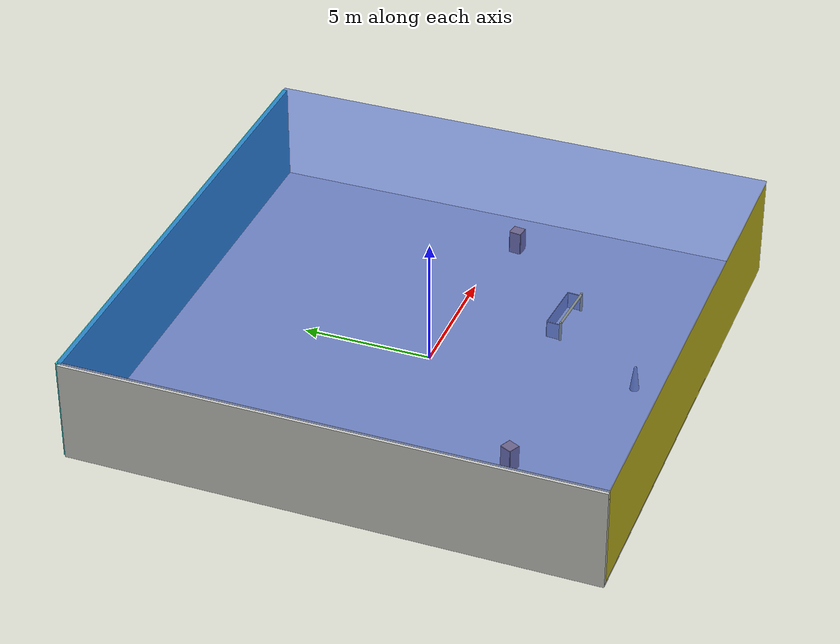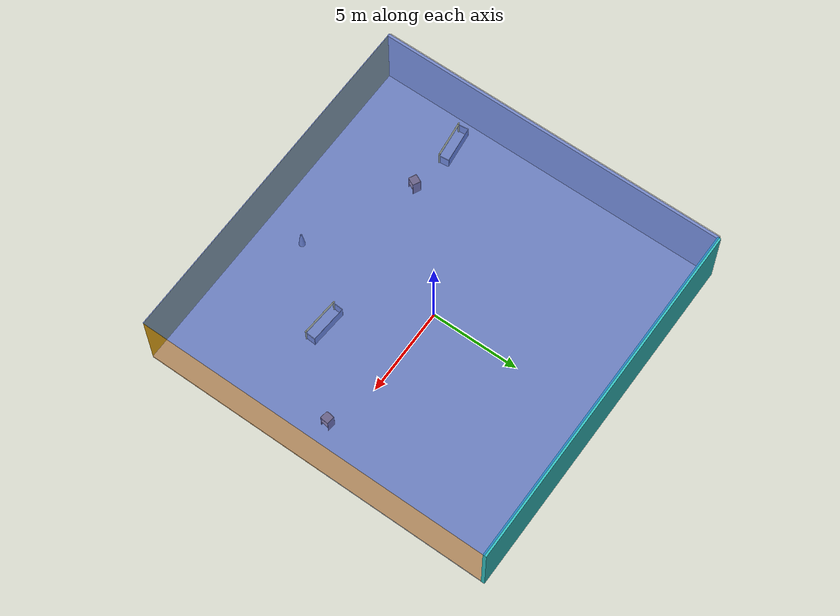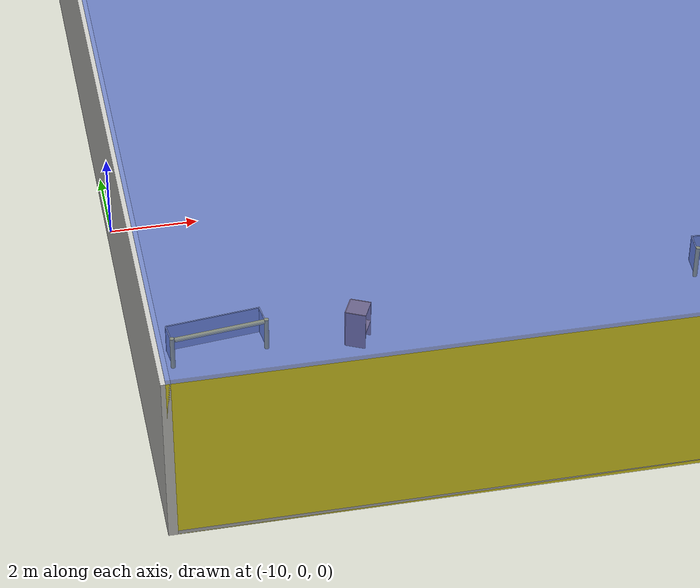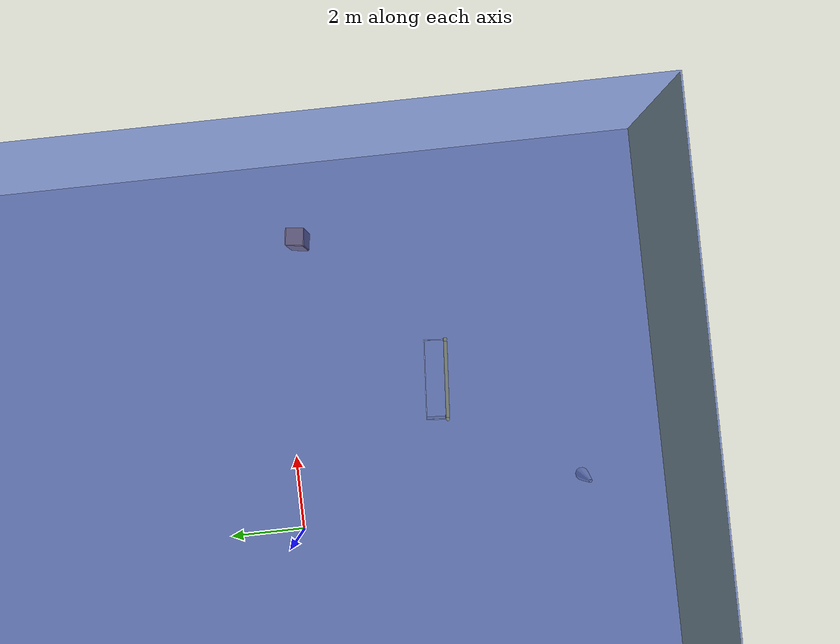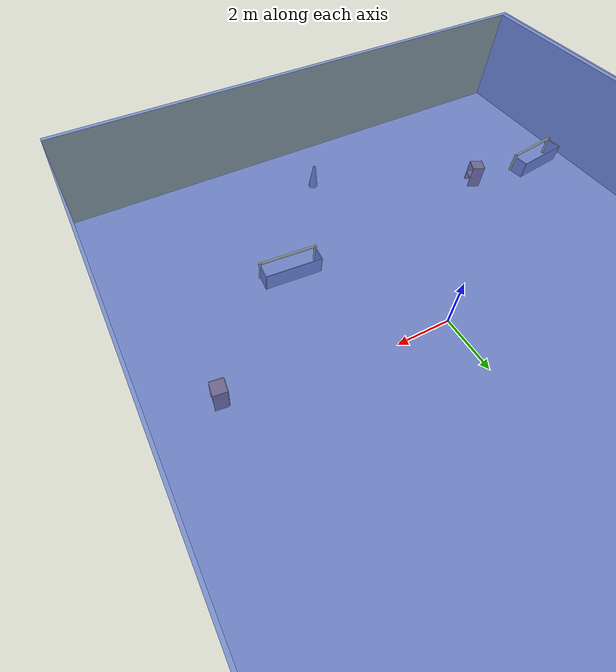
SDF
<sdf version="1.4">
 <world name="default">
  <physics type="ode">
   <max_step_size>0.001</max_step_size>
   <real_time_factor>1</real_time_factor>
   <real_time_update_rate>1000</real_time_update_rate>
   <gravity>0 0 -9.8</gravity>
  </physics>
  <scene><ambient>0.4 0.4 0.4 1</ambient><background>0.7 0.7 0.7 1</background><shadows>1</shadows></scene>
  <model name="Surrounding">
   <static>1</static>
   <link name="Ceiling">
    <collision name="Ceiling_Collision"><geometry><box><size>20 20 0.1</size></box></geometry></collision>
    <visual name="Ceiling_Visual">
     <geometry><box><size>20 20 0.1</size></box></geometry>
     <material>
      <script><uri>file://media/materials/scripts/gazebo.material</uri><name>Gazebo/BlueTransparent</name></script>
     </material>
    </visual>
    <pose>0 0 4.05 0 0 0</pose>
   </link>
   <link name="Wall_South">
    <collision name="Wall_South_Collision">
     <geometry><box><size>20 0 4</size></box></geometry>
     <pose>0 0 2 0 -0 0</pose>
    </collision>
    <visual name="Wall_South_Visual">
     <pose>0 0 2 0 -0 0</pose>
     <geometry><box><size>20 0 4</size></box></geometry>
     <material>
      <script><uri>file://media/materials/scripts/gazebo.material</uri><name>Gazebo/Yellow</name></script>
     </material>
    </visual>
    <velocity_decay><linear>0</linear><angular>0</angular></velocity_decay>
    <pose>0 -10 0 0 -0 0</pose>
   </link>
   <link name="Wall_East">
    <collision name="Wall_21_Collision">
     <geometry><box><size>20 0 4</size></box></geometry>
     <pose>0 0 2 0 -0 0</pose>
    </collision>
    <visual name="Wall_21_Visual">
     <pose>0 0 2 0 -0 0</pose>
     <geometry><box><size>20 0 4</size></box></geometry>
     <material>
      <script>
       <uri>file://media/materials/scripts/gazebo.material</uri>
       <name>Gazebo/OrangeTransparent</name>
      </script>
     </material>
    </visual>
    <velocity_decay><linear>0</linear><angular>0</angular></velocity_decay>
    <pose>10 0 0 0 -0 1.5708</pose>
   </link>
   <link name="Wall_North">
    <collision name="Wall_22_Collision">
     <geometry><box><size>20 0.2 4</size></box></geometry>
     <pose>0 0 2 0 -0 0</pose>
    </collision>
    <visual name="Wall_22_Visual">
     <pose>0 0 2 0 -0 0</pose>
     <geometry><box><size>20 0.2 4</size></box></geometry>
     <material>
      <script><uri>file://media/materials/scripts/gazebo.material</uri><name>Gazebo/TurquoiseGlow</name></script>
     </material>
    </visual>
    <velocity_decay><linear>0</linear><angular>0</angular></velocity_decay>
    <pose>0 10 0 0 -0 0</pose>
   </link>
   <link name="Wall_West">
    <collision name="Wall_23_Collision">
     <geometry><box><size>20 0.2 4</size></box></geometry>
     <pose>0 0 2 0 -0 0</pose>
    </collision>
    <visual name="Wall_23_Visual">
     <pose>0 0 2 0 -0 0</pose>
     <geometry><box><size>20 0.2 4</size></box></geometry>
     <material>
      <script><uri>file://media/materials/scripts/gazebo.material</uri><name>Gazebo/CeilingTiled</name></script>
     </material>
    </visual>
    <velocity_decay><linear>0</linear><angular>0</angular></velocity_decay>
    <pose>-10 0 0 0 0 -1.5708</pose>
   </link>
   <link name="Ground_link">
    <collision name="collision">
     <pose>0 0 .05 0 -0 0</pose>
     <geometry><box><size>20 20 0.1</size></box></geometry>
    </collision>
    <visual name="visual">
     <pose>0 0 .05 0 -0 0</pose>
     <geometry><box><size>20 20 0.1</size></box></geometry>
     <material>
      <script><uri>file://media/materials/scripts/gazebo.material</uri><name>Gazebo/Pioneer2Body</name></script>
     </material>
    </visual>
   </link>
   <static>1</static>
  </model>
  <spherical_coordinates>
   <surface_model>EARTH_WGS84</surface_model>
   <latitude_deg>0</latitude_deg>
   <longitude_deg>0</longitude_deg>
   <elevation>0</elevation>
   <heading_deg>0</heading_deg>
  </spherical_coordinates>
  <light name="lightball_0" type="diffuse">
   <diffuse>0.8 0.8 0.8 1</diffuse>
   <specular>0.2 0.2 0.2 1</specular>
   <attenuation>
    <range>100</range>
    <constant>0.7</constant>
    <linear>0.01</linear>
    <quadratic>0.001</quadratic>
   </attenuation>
   <direction>-0.5 0.1 -0.9</direction>
   <pose>9.76059639877 -6.8752256826 2.01703658616 0 0 0</pose>
  </light>
  <light name="lightball_1" type="diffuse">
   <diffuse>0.8 0.8 0.8 1</diffuse>
   <specular>0.2 0.2 0.2 1</specular>
   <attenuation>
    <range>100</range>
    <constant>0.7</constant>
    <linear>0.01</linear>
    <quadratic>0.001</quadratic>
   </attenuation>
   <direction>-0.5 0.1 -0.9</direction>
   <pose>8.05405509166 -6.60365164929 2.55998196924 0 0 0</pose>
  </light>
  <light name="lightball_2" type="diffuse">
   <diffuse>0.8 0.8 0.8 1</diffuse>
   <specular>0.2 0.2 0.2 1</specular>
   <attenuation>
    <range>100</range>
    <constant>0.7</constant>
    <linear>0.01</linear>
    <quadratic>0.001</quadratic>
   </attenuation>
   <direction>-0.5 0.1 -0.9</direction>
   <pose>-0.958887387508 -4.9658879766 3.80118991453 0 0 0</pose>
  </light>
  <light name="lightball_3" type="diffuse">
   <diffuse>0.8 0.8 0.8 1</diffuse>
   <specular>0.2 0.2 0.2 1</specular>
   <attenuation>
    <range>100</range>
    <constant>0.7</constant>
    <linear>0.01</linear>
    <quadratic>0.001</quadratic>
   </attenuation>
   <direction>-0.5 0.1 -0.9</direction>
   <pose>5.03689216552 -0.698585955343 1.24770671386 0 0 0</pose>
  </light>
  <light name="lightball_4" type="diffuse">
   <diffuse>0.8 0.8 0.8 1</diffuse>
   <specular>0.2 0.2 0.2 1</specular>
   <attenuation>
    <range>100</range>
    <constant>0.7</constant>
    <linear>0.01</linear>
    <quadratic>0.001</quadratic>
   </attenuation>
   <direction>-0.5 0.1 -0.9</direction>
   <pose>0.911198274726 1.95601474178 1.1784591853 0 0 0</pose>
  </light>
  <light name="lightball_5" type="diffuse">
   <diffuse>0.8 0.8 0.8 1</diffuse>
   <specular>0.2 0.2 0.2 1</specular>
   <attenuation>
    <range>100</range>
    <constant>0.7</constant>
    <linear>0.01</linear>
    <quadratic>0.001</quadratic>
   </attenuation>
   <direction>-0.5 0.1 -0.9</direction>
   <pose>-7.91209938081 5.75011341725 2.72565133697 0 0 0</pose>
  </light>
  <light name="lightball_6" type="diffuse">
   <diffuse>0.8 0.8 0.8 1</diffuse>
   <specular>0.2 0.2 0.2 1</specular>
   <attenuation>
    <range>100</range>
    <constant>0.7</constant>
    <linear>0.01</linear>
    <quadratic>0.001</quadratic>
   </attenuation>
   <direction>-0.5 0.1 -0.9</direction>
   <pose>7.06874232726 -2.14888171192 3.01193336251 0 0 0</pose>
  </light>
  <light name="lightball_7" type="diffuse">
   <diffuse>0.8 0.8 0.8 1</diffuse>
   <specular>0.2 0.2 0.2 1</specular>
   <attenuation>
    <range>100</range>
    <constant>0.7</constant>
    <linear>0.01</linear>
    <quadratic>0.001</quadratic>
   </attenuation>
   <direction>-0.5 0.1 -0.9</direction>
   <pose>9.5285753886 -5.52187834336 3.22580108458 0 0 0</pose>
  </light>
  <include>
   <uri>model://robocup_3Dsim_goal</uri>
   <pose>-8.24062317192 -4.96028938303 0 0 0 1.68762044287</pose>
  </include>
  <include><uri>model://cabinet</uri><pose>-5.2050588232 -4.96436382645 0 0 0 2.69344096956</pose></include>
  <include>
   <uri>model://construction_cone</uri>
   <pose>0.718678404185 -7.74613965466 0 0 0 0.814680481336</pose>
  </include>
  <include>
   <uri>model://robocup_3Dsim_goal</uri>
   <pose>3.72724709694 -4.30813366233 0 0 0 1.49994268907</pose>
  </include>
  <include><uri>model://cabinet</uri><pose>7.85965509097 -0.744627240448 0 0 0 3.01276333038</pose></include>
 </world>
</sdf>

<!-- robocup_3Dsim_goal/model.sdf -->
<sdf version="1.5">
  <model name="robocup_3d_goal">
    <static>true</static>
    <link name="left_post">
      <pose>0 1.05 0.45 0 0 0</pose>
      <collision name="collision">
        <geometry>
          <cylinder>
            <radius>0.05</radius>
            <length>0.9</length>
          </cylinder>
        </geometry>
      </collision>
      <visual name="visual">
        <geometry>
          <cylinder>
            <radius>0.05</radius>
            <length>0.9</length>
          </cylinder>
        </geometry>
        <material>
          <script>
            <uri>file://media/materials/scripts/gazebo.material</uri>
            <name>Gazebo/ZincYellow</name>
          </script>
        </material>
      </visual>
    </link>
    <link name="left_support_horiz_lower">
      <pose>0.30 1.05 0.01 0 0 0</pose>
      <collision name="collision">
        <geometry>
          <box>
            <size>0.50 0.02 0.02</size>
          </box>
        </geometry>
      </collision>
      <visual name="visual">
        <geometry>
          <box>
            <size>0.50 0.02 0.02</size>
          </box>
        </geometry>
        <material>
          <script>
            <uri>file://media/materials/scripts/gazebo.material</uri>
            <name>Gazebo/White</name>
          </script>
        </material>
      </visual>
    </link>
    <link name="left_support_horiz_upper">
      <pose>0.30 1.05 0.79 0 0 0</pose>
      <collision name="collision">
        <geometry>
          <box>
            <size>0.50 0.02 0.02</size>
          </box>
        </geometry>
      </collision>
      <visual name="visual">
        <geometry>
          <box>
            <size>0.50 0.02 0.02</size>
          </box>
        </geometry>
        <material>
          <script>
            <uri>file://media/materials/scripts/gazebo.material</uri>
            <name>Gazebo/White</name>
          </script>
        </material>
      </visual>
    </link>
    <link name="left_support_vertical">
      <pose>0.56 1.05 0.4 0 1.5708 0</pose>
      <collision name="collision">
        <geometry>
          <box>
            <size>0.80 0.02 0.02</size>
          </box>
        </geometry>
      </collision>
      <visual name="visual">
        <geometry>
          <box>
            <size>0.80 0.02 0.02</size>
          </box>
        </geometry>
        <material>
          <script>
            <uri>file://media/materials/scripts/gazebo.material</uri>
            <name>Gazebo/White</name>
          </script>
        </material>
      </visual>
    </link>
    <link name="right_support_horiz_lower">
      <pose>0.30 -1.05 0.01 0 0 0</pose>
      <collision name="collision">
        <geometry>
          <box>
            <size>0.50 0.02 0.02</size>
          </box>
        </geometry>
      </collision>
      <visual name="visual">
        <geometry>
          <box>
            <size>0.50 0.02 0.02</size>
          </box>
        </geometry>
        <material>
          <script>
            <uri>file://media/materials/scripts/gazebo.material</uri>
            <name>Gazebo/White</name>
          </script>
        </material>
      </visual>
    </link>
    <link name="right_support_horiz_upper">
      <pose>0.30 -1.05 0.79 0 0 0</pose>
      <collision name="collision">
        <geometry>
          <box>
            <size>0.50 0.02 0.02</size>
          </box>
        </geometry>
      </collision>
      <visual name="visual">
        <geometry>
          <box>
            <size>0.50 0.02 0.02</size>
          </box>
        </geometry>
        <material>
          <script>
            <uri>file://media/materials/scripts/gazebo.material</uri>
            <name>Gazebo/White</name>
          </script>
        </material>
      </visual>
    </link>
    <link name="right_support_vertical">
      <pose>0.56 -1.05 0.4 0 1.5708 0</pose>
      <collision name="collision">
        <geometry>
          <box>
            <size>0.80 0.02 0.02</size>
          </box>
        </geometry>
      </collision>
      <visual name="visual">
        <geometry>
          <box>
            <size>0.80 0.02 0.02</size>
          </box>
        </geometry>
        <material>
          <script>
            <uri>file://media/materials/scripts/gazebo.material</uri>
            <name>Gazebo/White</name>
          </script>
        </material>
      </visual>
    </link>
    <link name="center_support_horiz_lower">
      <pose>0.56 0 0.01 0 1.5708 0</pose>
      <collision name="collision">
        <geometry>
          <box>
            <size>0.02 2.08 0.02</size>
          </box>
        </geometry>
      </collision>
      <visual name="visual">
        <geometry>
          <box>
            <size>0.02 2.08 0.02</size>
          </box>
        </geometry>
        <material>
          <script>
            <uri>file://media/materials/scripts/gazebo.material</uri>
            <name>Gazebo/White</name>
          </script>
        </material>
      </visual>
    </link>
    <link name="center_support_horiz_upper">
      <pose>0.56 0 0.79 0 1.5708 0</pose>
      <collision name="collision">
        <geometry>
          <box>
            <size>0.02 2.08 0.02</size>
          </box>
        </geometry>
      </collision>
      <visual name="visual">
        <geometry>
          <box>
            <size>0.02 2.08 0.02</size>
          </box>
        </geometry>
        <material>
          <script>
            <uri>file://media/materials/scripts/gazebo.material</uri>
            <name>Gazebo/White</name>
          </script>
        </material>
      </visual>
    </link>
    <link name="right_post">
      <pose>0 -1.05 0.45 0 0 0</pose>
      <collision name="collision">
        <geometry>
          <cylinder>
            <radius>0.05</radius>
            <length>0.9</length>
          </cylinder>
        </geometry>
      </collision>
      <visual name="visual">
        <geometry>
          <cylinder>
            <radius>0.05</radius>
            <length>0.9</length>
          </cylinder>
        </geometry>
        <material>
          <script>
            <uri>file://media/materials/scripts/gazebo.material</uri>
            <name>Gazebo/ZincYellow</name>
          </script>
        </material>
      </visual>
    </link>
    <link name="crossbar">
      <pose>0 0 0.85 1.57 1.57 0</pose>
      <collision name="collision">
        <geometry>
          <cylinder>
            <radius>0.05</radius>
            <length>2.0</length>
          </cylinder>
        </geometry>
      </collision>
      <visual name="visual">
        <geometry>
          <cylinder>
            <radius>0.05</radius>
            <length>2.0</length>
          </cylinder>
        </geometry>
        <material>
          <script>
            <uri>file://media/materials/scripts/gazebo.material</uri>
            <name>Gazebo/ZincYellow</name>
          </script>
        </material>
      </visual>
    </link>
    <link name="center_net">
      <pose>0.56 0 0.40 0 0 0</pose>
      <collision name="collision">
        <geometry>
          <box>
            <size>0.01 2.1 0.80</size>
          </box>
        </geometry>
      </collision>
      <visual name="visual">
        <geometry>
          <box>
            <size>0.01 2.1 0.80</size>
          </box>
        </geometry>
        <material>
          <script>
            <uri>model://../model_source/models/robocup09_spl_field/materials/scripts/</uri>
            <uri>model://../model_source/models/robocup09_spl_field/materials/textures/</uri>
            <name>RoboCup/Net</name>
          </script>
        </material>
      </visual>
    </link>
    <link name="left_net">
      <pose>0.30 1.05 0.40 0 0 0</pose>
      <collision name="collision">
        <geometry>
          <box>
            <size>0.50 0.01 0.76</size>
          </box>
        </geometry>
      </collision>
      <visual name="visual">
        <geometry>
          <box>
            <size>0.50 0.01 0.76</size>
          </box>
        </geometry>
        <material>
          <script>
            <uri>model://../model_source/models/robocup09_spl_field/materials/scripts/</uri>
            <uri>model://../model_source/models/robocup09_spl_field/materials/textures/</uri>
            <name>RoboCup/Net</name>
          </script>
        </material>
      </visual>
    </link>
    <link name="right_net">
      <pose>0.30 -1.05 0.40 0 0 0</pose>
      <collision name="collision">
        <geometry>
          <box>
            <size>0.50 0.01 0.76</size>
          </box>
        </geometry>
      </collision>
      <visual name="visual">
        <geometry>
          <box>
            <size>0.50 0.01 0.76</size>
          </box>
        </geometry>
        <material>
          <script>
            <uri>model://../model_source/models/robocup09_spl_field/materials/scripts/</uri>
            <uri>model://../model_source/models/robocup09_spl_field/materials/textures/</uri>
            <name>RoboCup/Net</name>
          </script>
        </material>
      </visual>
    </link>
  </model>
</sdf>

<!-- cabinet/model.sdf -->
<sdf version="1.5">
  <model name="cabinet">
    <static>true</static>
    <link name="cabinet_bottom_plate">
      <inertial>
        <pose>0 0 -1 0 0 0</pose>
        <inertia>
          <ixx>2.050000</ixx>
          <ixy>0</ixy>
          <ixz>0</ixz>
          <iyy>2.050000</iyy>
          <iyz>0</iyz>
          <izz>2.050000</izz>
        </inertia>
        <mass>25.000000</mass>
      </inertial>
      <collision name="cabinet_bottom_plate_geom">
        <pose>0 0 0.010000 0 0 0</pose>
        <geometry>
          <box>
            <size>0.450000 0.450000 0.020000</size>
          </box>
        </geometry>
      </collision>
      <visual name="cabinet_bottom_plate_geom_visual">
        <pose>0 0 0.010000 0 0 0</pose>
        <geometry>
          <box>
            <size>0.450000 0.450000 0.020000</size>
          </box>
        </geometry>
        <material>
          <script>
            <uri>model://media/materials/scripts/gazebo.material</uri>
            <name>Gazebo/Wood</name>
          </script>
        </material>
      </visual>
      <collision name="cabinet_bottom_plate_geom_cabinet_back_plate">
        <pose>0.235000 0 0.510000 0 0 0</pose>
        <geometry>
          <box>
            <size>0.020000 0.450000 1.020000</size>
          </box>
        </geometry>
      </collision>
      <visual name="cabinet_bottom_plate_geom_cabinet_back_plate_visual">
        <pose>0.235000 0 0.510000 0 0 0</pose>
        <geometry>
          <box>
            <size>0.020000 0.450000 1.020000</size>
          </box>
        </geometry>
        <material>
          <script>
            <uri>model://media/materials/scripts/gazebo.material</uri>
            <name>Gazebo/Wood</name>
          </script>
        </material>
      </visual>
      <collision name="cabinet_bottom_plate_geom_cabinet_left_plate">
        <pose>0 0.235000 0.510000 0 0 0</pose>
        <geometry>
          <box>
            <size>0.450000 0.020000 1.020000</size>
          </box>
        </geometry>
      </collision>
      <visual name="cabinet_bottom_plate_geom_cabinet_left_plate_visual">
        <pose>0 0.235000 0.510000 0 0 0</pose>
        <geometry>
          <box>
            <size>0.450000 0.020000 1.020000</size>
          </box>
        </geometry>
        <material>
          <script>
            <uri>model://media/materials/scripts/gazebo.material</uri>
            <name>Gazebo/Wood</name>
          </script>
        </material>
      </visual>
      <collision name="cabinet_bottom_plate_geom_cabinet_middle_plate">
        <pose>0 0 0.510000 0 0 0</pose>
        <geometry>
          <box>
            <size>0.450000 0.450000 0.020000</size>
          </box>
        </geometry>
      </collision>
      <visual name="cabinet_bottom_plate_geom_cabinet_middle_plate_visual">
        <pose>0 0 0.510000 0 0 0</pose>
        <geometry>
          <box>
            <size>0.450000 0.450000 0.020000</size>
          </box>
        </geometry>
        <material>
          <script>
            <uri>model://media/materials/scripts/gazebo.material</uri>
            <name>Gazebo/Wood</name>
          </script>
        </material>
      </visual>
      <collision name="cabinet_bottom_plate_geom_cabinet_right_plate">
        <pose>0 -0.235000 0.510000 0 0 0</pose>
        <geometry>
          <box>
            <size>0.450000 0.020000 1.020000</size>
          </box>
        </geometry>
      </collision>
      <visual name="cabinet_bottom_plate_geom_cabinet_right_plate_visual">
        <pose>0 -0.235000 0.510000 0 0 0</pose>
        <geometry>
          <box>
            <size>0.450000 0.020000 1.020000</size>
          </box>
        </geometry>
        <material>
          <script>
            <uri>model://media/materials/scripts/gazebo.material</uri>
            <name>Gazebo/Wood</name>
          </script>
        </material>
      </visual>
      <collision name="cabinet_bottom_plate_geom_cabinet_top_plate">
        <pose>0 0 1.010000 0 0 0</pose>
        <geometry>
          <box>
            <size>0.450000 0.450000 0.020000</size>
          </box>
        </geometry>
      </collision>
      <visual name="cabinet_bottom_plate_geom_cabinet_top_plate_visual">
        <pose>0 0 1.010000 0 0 0</pose>
        <geometry>
          <box>
            <size>0.450000 0.450000 0.020000</size>
          </box>
        </geometry>
        <material>
          <script>
            <uri>model://media/materials/scripts/gazebo.material</uri>
            <name>Gazebo/Wood</name>
          </script>
        </material>
      </visual>
    </link>
  </model>
</sdf>

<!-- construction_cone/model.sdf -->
<sdf version="1.5">
  <model name="Construction Cone">
    <link name="link">
      <collision name="collision">
        <geometry>
          <mesh>
            <scale>10 10 10</scale>
            <uri>file://isr-testbed/construction_cone/meshes/construction_cone.dae</uri>
          </mesh>
        </geometry>
      </collision>
      <visual name="visual">
        <geometry>
          <mesh>
            <scale>10 10 10</scale>
            <uri>file://isr-testbed/construction_cone/meshes/construction_cone.dae</uri>
          </mesh>
        </geometry>
      </visual>
    </link>
  </model>
</sdf>
